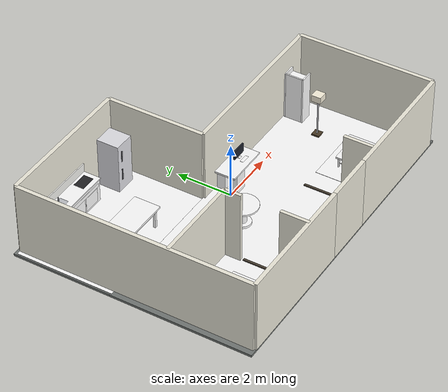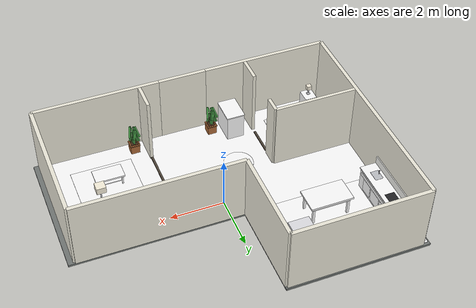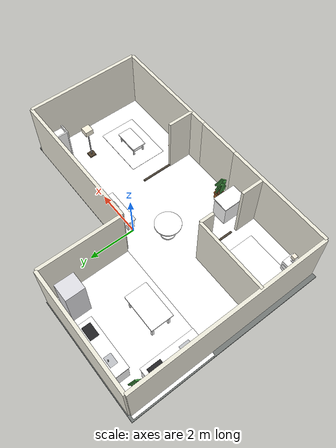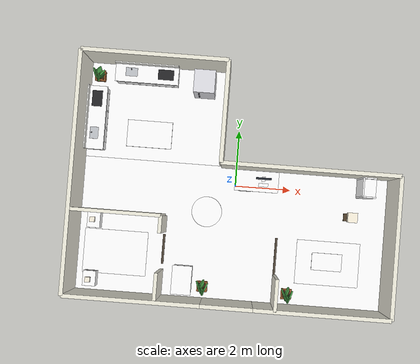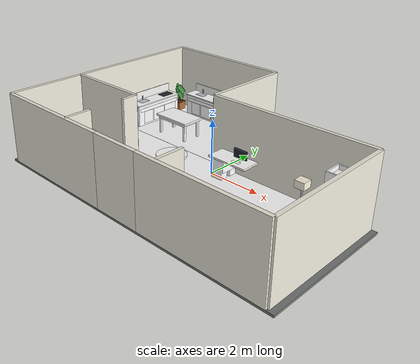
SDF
<sdf version="1.9">
 <world name="house3">
  <gravity>0 0 -9.8</gravity>
  <scene>
   <ambient>0.42 0.42 0.40 1</ambient>
   <background>0.72 0.78 0.82 1</background>
   <shadows>true</shadows>
  </scene>
  <light name="sun_key" type="directional">
   <pose>0 0 7 0 0 0</pose>
   <diffuse>0.82 0.84 0.86 1</diffuse>
   <specular>0.18 0.18 0.18 1</specular>
   <direction>-0.45 0.28 -0.84</direction>
  </light>
  <light name="foyer_light" type="point">
   <cast_shadows>false</cast_shadows>
   <pose>0.0 -3.15 2.35 0 0 0</pose>
   <diffuse>1.0 0.90 0.74 1</diffuse>
   <specular>0.18 0.16 0.13 1</specular>
   <attenuation>
    <range>5.2</range>
    <constant>0.55</constant>
    <linear>0.055</linear>
    <quadratic>0.014</quadratic>
   </attenuation>
  </light>
  <light name="living_light" type="point">
   <pose>3.75 -2.20 2.45 0 0 0</pose>
   <diffuse>0.98 0.92 0.80 1</diffuse>
   <specular>0.22 0.20 0.16 1</specular>
   <attenuation>
    <range>7.4</range>
    <constant>0.50</constant>
    <linear>0.045</linear>
    <quadratic>0.010</quadratic>
   </attenuation>
  </light>
  <light name="kitchen_dining_light" type="point">
   <pose>-3.50 2.45 2.45 0 0 0</pose>
   <diffuse>1.0 0.95 0.84 1</diffuse>
   <specular>0.22 0.20 0.16 1</specular>
   <attenuation>
    <range>7.0</range>
    <constant>0.50</constant>
    <linear>0.046</linear>
    <quadratic>0.010</quadratic>
   </attenuation>
  </light>
  <light name="bedroom_light" type="point">
   <pose>-4.10 -2.75 2.35 0 0 0</pose>
   <diffuse>1.0 0.82 0.62 1</diffuse>
   <specular>0.20 0.16 0.12 1</specular>
   <attenuation>
    <range>5.8</range>
    <constant>0.56</constant>
    <linear>0.05</linear>
    <quadratic>0.012</quadratic>
   </attenuation>
  </light>
  <light name="central_hall_light" type="point">
   <cast_shadows>false</cast_shadows>
   <pose>0.55 -0.25 2.35 0 0 0</pose>
   <diffuse>0.98 0.90 0.78 1</diffuse>
   <specular>0.20 0.18 0.14 1</specular>
   <attenuation>
    <range>4.8</range>
    <constant>0.58</constant>
    <linear>0.05</linear>
    <quadratic>0.012</quadratic>
   </attenuation>
  </light>
  <include><uri>model://house3_shell</uri><name>l_shaped_house3_shell</name></include>
  <include><uri>model://plant</uri><name>foyer_planter</name><pose>-0.92 -3.70 0 0 0 0</pose></include>
  <include><uri>model://rug</uri><name>living_rug</name><pose>3.55 -2.55 0 0 0 0</pose></include>
  <include>
   <uri>model://coffee_table</uri>
   <name>living_coffee_table</name>
   <pose>3.48 -2.48 0 0 0 0</pose>
  </include>
  <include><uri>model://bookshelf</uri><name>living_bookcase</name><pose>4.65 0.26 0 0 0 0</pose></include>
  <include><uri>model://floor_lamp</uri><name>living_floor_lamp</name><pose>4.15 -0.82 0 0 0 0</pose></include>
  <include><uri>model://plant</uri><name>living_corner_plant</name><pose>2.12 -3.74 0 0 0 0</pose></include>
  <include><uri>model://table</uri><name>dining_table</name><pose>-3.20 1.60 0 0 0 0</pose></include>
  <include>
   <uri>model://kitchen_counter</uri>
   <name>kitchen_counter_north</name>
   <pose>-3.45 3.75 0 0 0 0</pose>
  </include>
  <include>
   <uri>model://kitchen_counter</uri>
   <name>kitchen_counter_west</name>
   <pose>-5.15 2.05 0 0 0 1.5708</pose>
  </include>
  <include><uri>model://fridge</uri><name>kitchen_fridge</name><pose>-1.35 3.52 0 0 0 4.71239</pose></include>
  <include><uri>model://plant</uri><name>kitchen_plant</name><pose>-5.18 3.62 0 0 0 0</pose></include>
  <include><uri>model://rug</uri><name>bedroom_rug</name><pose>-4.18 -2.72 0 0 0 0</pose></include>
  <include>
   <uri>model://nightstand</uri>
   <name>bedroom_nightstand_north</name>
   <pose>-4.98 -1.60 0 0 0 4.71239</pose>
  </include>
  <include>
   <uri>model://nightstand</uri>
   <name>bedroom_nightstand_south</name>
   <pose>-4.98 -3.70 0 0 0 1.5708</pose>
  </include>
  <include><uri>model://dresser</uri><name>bedroom_dresser</name><pose>-1.65 -3.48 0 0 0 1.5708</pose></include>
  <include><uri>model://desk</uri><name>office_desk</name><pose>0.75 0.22 0 0 0 0</pose></include>
  <include>
   <uri>model://round_table</uri>
   <name>office_meeting_table</name>
   <pose>-0.95 -1.00 0 0 0 0</pose>
  </include>
 </world>
</sdf>

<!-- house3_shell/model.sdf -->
<sdf version="1.9">
  <model name="house3_shell">
    <static>true</static>
    <link name="link">

      <!-- True L-shaped house: south bedroom/living wing plus northwest kitchen wing. -->
      <visual name="foundation_south_wing_visual">
        <pose>0.00 -1.75 -0.055 0 0 0</pose>
        <geometry><box><size>11.70 5.00 0.08</size></box></geometry>
        <material><ambient>0.34 0.36 0.35 1</ambient><diffuse>0.45 0.47 0.46 1</diffuse></material>
      </visual>
      <collision name="foundation_south_wing_collision">
        <pose>0.00 -1.75 -0.055 0 0 0</pose>
        <geometry><box><size>11.70 5.00 0.08</size></box></geometry>
      </collision>
      <visual name="foundation_north_wing_visual">
        <pose>-3.175 2.45 -0.055 0 0 0</pose>
        <geometry><box><size>5.35 3.70 0.08</size></box></geometry>
        <material><ambient>0.34 0.36 0.35 1</ambient><diffuse>0.45 0.47 0.46 1</diffuse></material>
      </visual>
      <collision name="foundation_north_wing_collision">
        <pose>-3.175 2.45 -0.055 0 0 0</pose>
        <geometry><box><size>5.35 3.70 0.08</size></box></geometry>
      </collision>

      <visual name="floor_south_wing_visual">
        <pose>0.00 -1.75 -0.006 0 0 0</pose>
        <geometry><box><size>11.20 4.90 0.012</size></box></geometry>
        <material>
          <ambient>1 1 1 1</ambient>
          <diffuse>1 1 1 1</diffuse>
          <specular>0.05 0.05 0.05 1</specular>
          <pbr>
            <metal>
              <albedo_map>materials/textures/wood_albedo.jpg</albedo_map>
              <normal_map>materials/textures/wood_normal.jpg</normal_map>
              <roughness_map>materials/textures/wood_roughness.jpg</roughness_map>
              <metalness>0.0</metalness>
            </metal>
          </pbr>
        </material>
      </visual>
      <collision name="floor_south_wing_collision">
        <pose>0.00 -1.75 -0.006 0 0 0</pose>
        <geometry><box><size>11.20 4.90 0.012</size></box></geometry>
      </collision>
      <visual name="floor_north_wing_visual">
        <pose>-3.175 2.45 -0.005 0 0 0</pose>
        <geometry><box><size>5.25 3.50 0.012</size></box></geometry>
        <material>
          <ambient>1 1 1 1</ambient>
          <diffuse>1 1 1 1</diffuse>
          <specular>0.05 0.05 0.05 1</specular>
          <pbr>
            <metal>
              <albedo_map>materials/textures/wood_albedo.jpg</albedo_map>
              <normal_map>materials/textures/wood_normal.jpg</normal_map>
              <roughness_map>materials/textures/wood_roughness.jpg</roughness_map>
              <metalness>0.0</metalness>
            </metal>
          </pbr>
        </material>
      </visual>
      <collision name="floor_north_wing_collision">
        <pose>-3.175 2.45 -0.005 0 0 0</pose>
        <geometry><box><size>5.25 3.50 0.012</size></box></geometry>
      </collision>

      <!-- Exterior L-shaped boundary. -->
      <collision name="wall_west_full">
        <pose>-5.60 0.0 1.30 0 0 0</pose>
        <geometry><box><size>0.14 8.40 2.60</size></box></geometry>
      </collision>
      <visual name="wall_west_full_visual">
        <pose>-5.60 0.0 1.30 0 0 0</pose>
        <geometry><box><size>0.14 8.40 2.60</size></box></geometry>
        <material><ambient>0.80 0.81 0.77 1</ambient><diffuse>0.93 0.92 0.86 1</diffuse></material>
      </visual>
      <collision name="wall_south_left">
        <pose>-3.25 -4.20 1.30 0 0 0</pose>
        <geometry><box><size>4.70 0.14 2.60</size></box></geometry>
      </collision>
      <visual name="wall_south_left_visual">
        <pose>-3.25 -4.20 1.30 0 0 0</pose>
        <geometry><box><size>4.70 0.14 2.60</size></box></geometry>
        <material><ambient>0.80 0.81 0.77 1</ambient><diffuse>0.93 0.92 0.86 1</diffuse></material>
      </visual>
      <collision name="wall_south_right">
        <pose>3.25 -4.20 1.30 0 0 0</pose>
        <geometry><box><size>4.70 0.14 2.60</size></box></geometry>
      </collision>
      <visual name="wall_south_right_visual">
        <pose>3.25 -4.20 1.30 0 0 0</pose>
        <geometry><box><size>4.70 0.14 2.60</size></box></geometry>
        <material><ambient>0.80 0.81 0.77 1</ambient><diffuse>0.93 0.92 0.86 1</diffuse></material>
      </visual>
      <collision name="front_entry_closure">
        <pose>0.00 -4.20 1.30 0 0 0</pose>
        <geometry><box><size>1.80 0.14 2.60</size></box></geometry>
      </collision>
      <visual name="front_entry_closure_visual">
        <pose>0.00 -4.20 1.30 0 0 0</pose>
        <geometry><box><size>1.80 0.14 2.60</size></box></geometry>
        <material><ambient>0.80 0.81 0.77 1</ambient><diffuse>0.93 0.92 0.86 1</diffuse></material>
      </visual>
      <collision name="wall_east_south_wing">
        <pose>5.60 -1.75 1.30 0 0 0</pose>
        <geometry><box><size>0.14 4.90 2.60</size></box></geometry>
      </collision>
      <visual name="wall_east_south_wing_visual">
        <pose>5.60 -1.75 1.30 0 0 0</pose>
        <geometry><box><size>0.14 4.90 2.60</size></box></geometry>
        <material><ambient>0.80 0.81 0.77 1</ambient><diffuse>0.93 0.92 0.86 1</diffuse></material>
      </visual>
      <collision name="wall_inner_north_south_wing">
        <pose>2.525 0.70 1.30 0 0 0</pose>
        <geometry><box><size>6.15 0.14 2.60</size></box></geometry>
      </collision>
      <visual name="wall_inner_north_south_wing_visual">
        <pose>2.525 0.70 1.30 0 0 0</pose>
        <geometry><box><size>6.15 0.14 2.60</size></box></geometry>
        <material><ambient>0.80 0.81 0.77 1</ambient><diffuse>0.93 0.92 0.86 1</diffuse></material>
      </visual>
      <collision name="wall_inner_east_north_wing">
        <pose>-0.55 2.45 1.30 0 0 0</pose>
        <geometry><box><size>0.14 3.50 2.60</size></box></geometry>
      </collision>
      <visual name="wall_inner_east_north_wing_visual">
        <pose>-0.55 2.45 1.30 0 0 0</pose>
        <geometry><box><size>0.14 3.50 2.60</size></box></geometry>
        <material><ambient>0.80 0.81 0.77 1</ambient><diffuse>0.93 0.92 0.86 1</diffuse></material>
      </visual>
      <collision name="wall_north_wing">
        <pose>-3.075 4.20 1.30 0 0 0</pose>
        <geometry><box><size>5.05 0.14 2.60</size></box></geometry>
      </collision>
      <visual name="wall_north_wing_visual">
        <pose>-3.075 4.20 1.30 0 0 0</pose>
        <geometry><box><size>5.05 0.14 2.60</size></box></geometry>
        <material><ambient>0.80 0.81 0.77 1</ambient><diffuse>0.93 0.92 0.86 1</diffuse></material>
      </visual>

      <!-- Interior walls: bedroom split and living opening. -->
      <collision name="bedroom_east_wall_south">
        <pose>-2.45 -3.70 1.30 0 0 0</pose>
        <geometry><box><size>0.12 1.00 2.60</size></box></geometry>
      </collision>
      <visual name="bedroom_east_wall_south_visual">
        <pose>-2.45 -3.70 1.30 0 0 0</pose>
        <geometry><box><size>0.12 1.00 2.60</size></box></geometry>
        <material><ambient>0.80 0.81 0.77 1</ambient><diffuse>0.93 0.92 0.86 1</diffuse></material>
      </visual>
      <collision name="bedroom_east_wall_north">
        <pose>-2.45 -1.55 1.30 0 0 0</pose>
        <geometry><box><size>0.12 0.60 2.60</size></box></geometry>
      </collision>
      <visual name="bedroom_east_wall_north_visual">
        <pose>-2.45 -1.55 1.30 0 0 0</pose>
        <geometry><box><size>0.12 0.60 2.60</size></box></geometry>
        <material><ambient>0.80 0.81 0.77 1</ambient><diffuse>0.93 0.92 0.86 1</diffuse></material>
      </visual>
      <collision name="bedroom_north_wall">
        <pose>-4.025 -1.25 1.30 0 0 0</pose>
        <geometry><box><size>3.15 0.12 2.60</size></box></geometry>
      </collision>
      <visual name="bedroom_north_wall_visual">
        <pose>-4.025 -1.25 1.30 0 0 0</pose>
        <geometry><box><size>3.15 0.12 2.60</size></box></geometry>
        <material><ambient>0.80 0.81 0.77 1</ambient><diffuse>0.93 0.92 0.86 1</diffuse></material>
      </visual>

      <collision name="living_west_wall_south">
        <pose>1.65 -3.65 1.30 0 0 0</pose>
        <geometry><box><size>0.12 1.10 2.60</size></box></geometry>
      </collision>
      <visual name="living_west_wall_south_visual">
        <pose>1.65 -3.65 1.30 0 0 0</pose>
        <geometry><box><size>0.12 1.10 2.60</size></box></geometry>
        <material><ambient>0.80 0.81 0.77 1</ambient><diffuse>0.93 0.92 0.86 1</diffuse></material>
      </visual>

      <!-- Low thresholds show doors without blocking the robot or lidar. -->
      <visual name="bedroom_threshold">
        <pose>-2.44 -2.47 0.035 0 0 1.5708</pose>
        <geometry><box><size>1.08 0.08 0.04</size></box></geometry>
        <material><ambient>0.18 0.16 0.14 1</ambient><diffuse>0.30 0.26 0.21 1</diffuse></material>
      </visual>
      <visual name="living_threshold">
        <pose>1.64 -2.43 0.035 0 0 1.5708</pose>
        <geometry><box><size>1.34 0.08 0.04</size></box></geometry>
        <material><ambient>0.18 0.16 0.14 1</ambient><diffuse>0.30 0.26 0.21 1</diffuse></material>
      </visual>
    </link>
  </model>
</sdf>

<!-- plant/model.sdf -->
<sdf version="1.9">
  <model name="plant">
    <static>true</static>
    <link name="body">

      <collision name="pot_collision">
        <pose>0 0 0.18 0 0 0</pose>
        <geometry><box><size>0.34 0.34 0.38</size></box></geometry>
      </collision>
      <collision name="pot_lip_collision">
        <pose>0 0 0.35 0 0 0</pose>
        <geometry><box><size>0.38 0.38 0.03</size></box></geometry>
      </collision>
      <collision name="stem_main_collision">
        <pose>0 0 0.64 0 0 0</pose>
        <geometry><box><size>0.04 0.04 0.52</size></box></geometry>
      </collision>
      <collision name="stem_left_collision">
        <pose>-0.06 0.02 0.58 0.18 0.14 0</pose>
        <geometry><box><size>0.03 0.03 0.34</size></box></geometry>
      </collision>
      <collision name="stem_right_collision">
        <pose>0.06 -0.02 0.58 -0.18 -0.14 0</pose>
        <geometry><box><size>0.03 0.03 0.34</size></box></geometry>
      </collision>
      <collision name="leaf_left_top_collision">
        <pose>-0.12 0.03 0.92 0.65 0 0.40</pose>
        <geometry><box><size>0.05 0.18 0.42</size></box></geometry>
      </collision>
      <collision name="leaf_right_top_collision">
        <pose>0.12 -0.03 0.92 0.65 0 -0.40</pose>
        <geometry><box><size>0.05 0.18 0.42</size></box></geometry>
      </collision>
      <collision name="leaf_front_top_collision">
        <pose>0 0.12 0.88 0.52 -0.34 0</pose>
        <geometry><box><size>0.05 0.16 0.36</size></box></geometry>
      </collision>
      <collision name="leaf_back_top_collision">
        <pose>0 -0.12 0.88 0.52 0.34 0</pose>
        <geometry><box><size>0.05 0.16 0.36</size></box></geometry>
      </collision>
      <collision name="leaf_left_low_collision">
        <pose>-0.10 0.06 0.68 0.48 0 0.62</pose>
        <geometry><box><size>0.05 0.15 0.30</size></box></geometry>
      </collision>
      <collision name="leaf_right_low_collision">
        <pose>0.10 -0.06 0.68 0.48 0 -0.62</pose>
        <geometry><box><size>0.05 0.15 0.30</size></box></geometry>
      </collision>
      <collision name="leaf_front_low_collision">
        <pose>0.03 0.11 0.62 0.42 -0.22 0.15</pose>
        <geometry><box><size>0.05 0.14 0.26</size></box></geometry>
      </collision>
      <collision name="leaf_back_low_collision">
        <pose>-0.03 -0.11 0.62 0.42 0.22 -0.15</pose>
        <geometry><box><size>0.05 0.14 0.26</size></box></geometry>
      </collision>
      <visual name="pot_visual">
        <pose>0 0 0.18 0 0 0</pose>
        <geometry><box><size>0.34 0.34 0.38</size></box></geometry>
        <material>
          <ambient>0.50 0.31 0.16 1</ambient>
          <diffuse>0.68 0.42 0.22 1</diffuse>
        </material>
      </visual>
      <visual name="pot_lip">
        <pose>0 0 0.35 0 0 0</pose>
        <geometry><box><size>0.38 0.38 0.03</size></box></geometry>
        <material><ambient>0.56 0.35 0.18 1</ambient><diffuse>0.74 0.46 0.25 1</diffuse></material>
      </visual>
      <visual name="soil_visual">
        <pose>0 0 0.38 0 0 0</pose>
        <geometry><box><size>0.26 0.26 0.03</size></box></geometry>
        <material><ambient>0.19 0.12 0.07 1</ambient><diffuse>0.28 0.18 0.10 1</diffuse></material>
      </visual>

      <visual name="stem_main">
        <pose>0 0 0.64 0 0 0</pose>
        <geometry><box><size>0.04 0.04 0.52</size></box></geometry>
        <material><ambient>0.22 0.33 0.15 1</ambient><diffuse>0.34 0.50 0.22 1</diffuse></material>
      </visual>
      <visual name="stem_left">
        <pose>-0.06 0.02 0.58 0.18 0.14 0</pose>
        <geometry><box><size>0.03 0.03 0.34</size></box></geometry>
        <material><ambient>0.22 0.33 0.15 1</ambient><diffuse>0.34 0.50 0.22 1</diffuse></material>
      </visual>
      <visual name="stem_right">
        <pose>0.06 -0.02 0.58 -0.18 -0.14 0</pose>
        <geometry><box><size>0.03 0.03 0.34</size></box></geometry>
        <material><ambient>0.22 0.33 0.15 1</ambient><diffuse>0.34 0.50 0.22 1</diffuse></material>
      </visual>

      <visual name="leaf_left_top">
        <pose>-0.12 0.03 0.92 0.65 0 0.40</pose>
        <geometry><box><size>0.05 0.18 0.42</size></box></geometry>
        <material><ambient>0.18 0.40 0.18 1</ambient><diffuse>0.28 0.62 0.28 1</diffuse></material>
      </visual>
      <visual name="leaf_right_top">
        <pose>0.12 -0.03 0.92 0.65 0 -0.40</pose>
        <geometry><box><size>0.05 0.18 0.42</size></box></geometry>
        <material><ambient>0.18 0.40 0.18 1</ambient><diffuse>0.28 0.62 0.28 1</diffuse></material>
      </visual>
      <visual name="leaf_front_top">
        <pose>0 0.12 0.88 0.52 -0.34 0</pose>
        <geometry><box><size>0.05 0.16 0.36</size></box></geometry>
        <material><ambient>0.18 0.40 0.18 1</ambient><diffuse>0.28 0.62 0.28 1</diffuse></material>
      </visual>
      <visual name="leaf_back_top">
        <pose>0 -0.12 0.88 0.52 0.34 0</pose>
        <geometry><box><size>0.05 0.16 0.36</size></box></geometry>
        <material><ambient>0.18 0.40 0.18 1</ambient><diffuse>0.28 0.62 0.28 1</diffuse></material>
      </visual>
      <visual name="leaf_left_low">
        <pose>-0.10 0.06 0.68 0.48 0 0.62</pose>
        <geometry><box><size>0.05 0.15 0.30</size></box></geometry>
        <material><ambient>0.18 0.40 0.18 1</ambient><diffuse>0.28 0.62 0.28 1</diffuse></material>
      </visual>
      <visual name="leaf_right_low">
        <pose>0.10 -0.06 0.68 0.48 0 -0.62</pose>
        <geometry><box><size>0.05 0.15 0.30</size></box></geometry>
        <material><ambient>0.18 0.40 0.18 1</ambient><diffuse>0.28 0.62 0.28 1</diffuse></material>
      </visual>
      <visual name="leaf_front_low">
        <pose>0.03 0.11 0.62 0.42 -0.22 0.15</pose>
        <geometry><box><size>0.05 0.14 0.26</size></box></geometry>
        <material><ambient>0.18 0.40 0.18 1</ambient><diffuse>0.28 0.62 0.28 1</diffuse></material>
      </visual>
      <visual name="leaf_back_low">
        <pose>-0.03 -0.11 0.62 0.42 0.22 -0.15</pose>
        <geometry><box><size>0.05 0.14 0.26</size></box></geometry>
        <material><ambient>0.18 0.40 0.18 1</ambient><diffuse>0.28 0.62 0.28 1</diffuse></material>
      </visual>

    </link>
  </model>
</sdf>

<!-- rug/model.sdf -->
<sdf version="1.9">
  <model name="rug">
    <static>true</static>
    <link name="body">

      <visual name="rug_base">
        <pose>0 0 0.005 0 0 0</pose>
        <geometry><box><size>2.30 1.60 0.01</size></box></geometry>
        <material>
          <ambient>1 1 1 1</ambient>
          <diffuse>1 1 1 1</diffuse>
          <specular>0.01 0.01 0.01 1</specular>
          <pbr>
            <metal>
              <albedo_map>materials/textures/carpet_albedo.jpg</albedo_map>
              <normal_map>materials/textures/carpet_normal.jpg</normal_map>
              <roughness_map>materials/textures/carpet_roughness.jpg</roughness_map>
              <metalness>0.0</metalness>
            </metal>
          </pbr>
        </material>
      </visual>
    </link>
  </model>
</sdf>

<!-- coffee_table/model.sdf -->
<sdf version="1.9">
  <model name="coffee_table">
    <static>true</static>
    <link name="body">

      <collision name="top_collision">
        <pose>0 0 0.42 0 0 0</pose>
        <geometry><box><size>1.08 0.62 0.06</size></box></geometry>
      </collision>
      <visual name="top_visual">
        <pose>0 0 0.42 0 0 0</pose>
        <geometry><box><size>1.08 0.62 0.06</size></box></geometry>
        <material>
          <ambient>1 1 1 1</ambient>
          <diffuse>1 1 1 1</diffuse>
          <specular>0.05 0.05 0.05 1</specular>
          <pbr>
            <metal>
              <albedo_map>materials/textures/wood_albedo.png</albedo_map>
              <normal_map>materials/textures/wood_normal.png</normal_map>
              <roughness_map>materials/textures/wood_roughness.png</roughness_map>
              <metalness>0.0</metalness>
            </metal>
          </pbr>
        </material>
      </visual>

      <collision name="shelf_collision">
        <pose>0 0 0.17 0 0 0</pose>
        <geometry><box><size>0.90 0.46 0.035</size></box></geometry>
      </collision>
      <visual name="shelf_visual">
        <pose>0 0 0.17 0 0 0</pose>
        <geometry><box><size>0.90 0.46 0.035</size></box></geometry>
        <material>
          <ambient>1 1 1 1</ambient>
          <diffuse>1 1 1 1</diffuse>
          <specular>0.05 0.05 0.05 1</specular>
          <pbr>
            <metal>
              <albedo_map>materials/textures/wood_albedo.png</albedo_map>
              <normal_map>materials/textures/wood_normal.png</normal_map>
              <roughness_map>materials/textures/wood_roughness.png</roughness_map>
              <metalness>0.0</metalness>
            </metal>
          </pbr>
        </material>
      </visual>

      <collision name="leg_fl">
        <pose>0.45 0.23 0.21 0 0 0</pose>
        <geometry><box><size>0.055 0.055 0.43</size></box></geometry>
      </collision>
      <collision name="leg_fr">
        <pose>0.45 -0.23 0.21 0 0 0</pose>
        <geometry><box><size>0.055 0.055 0.43</size></box></geometry>
      </collision>
      <collision name="leg_bl">
        <pose>-0.45 0.23 0.21 0 0 0</pose>
        <geometry><box><size>0.055 0.055 0.43</size></box></geometry>
      </collision>
      <collision name="leg_br">
        <pose>-0.45 -0.23 0.21 0 0 0</pose>
        <geometry><box><size>0.055 0.055 0.43</size></box></geometry>
      </collision>

      <visual name="leg_fl_visual">
        <pose>0.45 0.23 0.21 0 0 0</pose>
        <geometry><box><size>0.055 0.055 0.43</size></box></geometry>
        <material><ambient>1 1 1 1</ambient><diffuse>1 1 1 1</diffuse><specular>0.05 0.05 0.05 1</specular><pbr><metal><albedo_map>materials/textures/wood_albedo.png</albedo_map><normal_map>materials/textures/wood_normal.png</normal_map><roughness_map>materials/textures/wood_roughness.png</roughness_map><metalness>0.0</metalness></metal></pbr></material>
      </visual>
      <visual name="leg_fr_visual">
        <pose>0.45 -0.23 0.21 0 0 0</pose>
        <geometry><box><size>0.055 0.055 0.43</size></box></geometry>
        <material><ambient>1 1 1 1</ambient><diffuse>1 1 1 1</diffuse><specular>0.05 0.05 0.05 1</specular><pbr><metal><albedo_map>materials/textures/wood_albedo.png</albedo_map><normal_map>materials/textures/wood_normal.png</normal_map><roughness_map>materials/textures/wood_roughness.png</roughness_map><metalness>0.0</metalness></metal></pbr></material>
      </visual>
      <visual name="leg_bl_visual">
        <pose>-0.45 0.23 0.21 0 0 0</pose>
        <geometry><box><size>0.055 0.055 0.43</size></box></geometry>
        <material><ambient>1 1 1 1</ambient><diffuse>1 1 1 1</diffuse><specular>0.05 0.05 0.05 1</specular><pbr><metal><albedo_map>materials/textures/wood_albedo.png</albedo_map><normal_map>materials/textures/wood_normal.png</normal_map><roughness_map>materials/textures/wood_roughness.png</roughness_map><metalness>0.0</metalness></metal></pbr></material>
      </visual>
      <visual name="leg_br_visual">
        <pose>-0.45 -0.23 0.21 0 0 0</pose>
        <geometry><box><size>0.055 0.055 0.43</size></box></geometry>
        <material><ambient>1 1 1 1</ambient><diffuse>1 1 1 1</diffuse><specular>0.05 0.05 0.05 1</specular><pbr><metal><albedo_map>materials/textures/wood_albedo.png</albedo_map><normal_map>materials/textures/wood_normal.png</normal_map><roughness_map>materials/textures/wood_roughness.png</roughness_map><metalness>0.0</metalness></metal></pbr></material>
      </visual>

    </link>
  </model>
</sdf>

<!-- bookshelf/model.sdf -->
<sdf version="1.9">
  <model name="bookshelf">
    <static>true</static>
    <link name="body">

      <collision name="left_side_collision">
        <pose>0 0.33 0.88 0 0 0</pose>
        <geometry><box><size>0.48 0.05 1.78</size></box></geometry>
      </collision>
      <collision name="right_side_collision">
        <pose>0 -0.33 0.88 0 0 0</pose>
        <geometry><box><size>0.48 0.05 1.78</size></box></geometry>
      </collision>
      <collision name="back_collision">
        <pose>-0.21 0 0.88 0 0 0</pose>
        <geometry><box><size>0.05 0.68 1.78</size></box></geometry>
      </collision>

      <collision name="bottom_shelf_collision">
        <pose>0.03 0 0.14 0 0 0</pose>
        <geometry><box><size>0.44 0.68 0.05</size></box></geometry>
      </collision>
      <collision name="mid1_shelf_collision">
        <pose>0.03 0 0.50 0 0 0</pose>
        <geometry><box><size>0.44 0.68 0.05</size></box></geometry>
      </collision>
      <collision name="mid2_shelf_collision">
        <pose>0.03 0 0.86 0 0 0</pose>
        <geometry><box><size>0.44 0.68 0.05</size></box></geometry>
      </collision>
      <collision name="mid3_shelf_collision">
        <pose>0.03 0 1.22 0 0 0</pose>
        <geometry><box><size>0.44 0.68 0.05</size></box></geometry>
      </collision>
      <collision name="top_shelf_collision">
        <pose>0.03 0 1.58 0 0 0</pose>
        <geometry><box><size>0.44 0.68 0.05</size></box></geometry>
      </collision>

      <collision name="books_2_collision">
        <pose>0.09 -0.03 0.66 0 0 0</pose>
        <geometry><box><size>0.20 0.42 0.24</size></box></geometry>
      </collision>
      <collision name="books_3_collision">
        <pose>0.09 0.02 1.02 0 0 0</pose>
        <geometry><box><size>0.20 0.46 0.24</size></box></geometry>
      </collision>
      <collision name="books_4_collision">
        <pose>0.09 -0.04 1.38 0 0 0</pose>
        <geometry><box><size>0.20 0.44 0.22</size></box></geometry>
      </collision>

      <visual name="left_side_visual">
        <pose>0 0.33 0.88 0 0 0</pose>
        <geometry><box><size>0.48 0.05 1.78</size></box></geometry>
        <material><ambient>1 1 1 1</ambient><diffuse>1 1 1 1</diffuse><specular>0.05 0.05 0.05 1</specular><pbr><metal><albedo_map>materials/textures/wood_albedo.jpg</albedo_map><normal_map>materials/textures/wood_normal.jpg</normal_map><roughness_map>materials/textures/wood_roughness.jpg</roughness_map><metalness>0.0</metalness></metal></pbr></material>
      </visual>
      <visual name="right_side_visual">
        <pose>0 -0.33 0.88 0 0 0</pose>
        <geometry><box><size>0.48 0.05 1.78</size></box></geometry>
        <material><ambient>1 1 1 1</ambient><diffuse>1 1 1 1</diffuse><specular>0.05 0.05 0.05 1</specular><pbr><metal><albedo_map>materials/textures/wood_albedo.jpg</albedo_map><normal_map>materials/textures/wood_normal.jpg</normal_map><roughness_map>materials/textures/wood_roughness.jpg</roughness_map><metalness>0.0</metalness></metal></pbr></material>
      </visual>
      <visual name="back_visual">
        <pose>-0.21 0 0.88 0 0 0</pose>
        <geometry><box><size>0.05 0.68 1.78</size></box></geometry>
        <material><ambient>1 1 1 1</ambient><diffuse>1 1 1 1</diffuse><specular>0.05 0.05 0.05 1</specular><pbr><metal><albedo_map>materials/textures/wood_albedo.jpg</albedo_map><normal_map>materials/textures/wood_normal.jpg</normal_map><roughness_map>materials/textures/wood_roughness.jpg</roughness_map><metalness>0.0</metalness></metal></pbr></material>
      </visual>

      <visual name="bottom_shelf_visual">
        <pose>0.03 0 0.14 0 0 0</pose>
        <geometry><box><size>0.44 0.68 0.05</size></box></geometry>
        <material><ambient>1 1 1 1</ambient><diffuse>1 1 1 1</diffuse><specular>0.05 0.05 0.05 1</specular><pbr><metal><albedo_map>materials/textures/wood_albedo.jpg</albedo_map><normal_map>materials/textures/wood_normal.jpg</normal_map><roughness_map>materials/textures/wood_roughness.jpg</roughness_map><metalness>0.0</metalness></metal></pbr></material>
      </visual>
      <visual name="mid1_shelf_visual">
        <pose>0.03 0 0.50 0 0 0</pose>
        <geometry><box><size>0.44 0.68 0.05</size></box></geometry>
        <material><ambient>1 1 1 1</ambient><diffuse>1 1 1 1</diffuse><specular>0.05 0.05 0.05 1</specular><pbr><metal><albedo_map>materials/textures/wood_albedo.jpg</albedo_map><normal_map>materials/textures/wood_normal.jpg</normal_map><roughness_map>materials/textures/wood_roughness.jpg</roughness_map><metalness>0.0</metalness></metal></pbr></material>
      </visual>
      <visual name="mid2_shelf_visual">
        <pose>0.03 0 0.86 0 0 0</pose>
        <geometry><box><size>0.44 0.68 0.05</size></box></geometry>
        <material><ambient>1 1 1 1</ambient><diffuse>1 1 1 1</diffuse><specular>0.05 0.05 0.05 1</specular><pbr><metal><albedo_map>materials/textures/wood_albedo.jpg</albedo_map><normal_map>materials/textures/wood_normal.jpg</normal_map><roughness_map>materials/textures/wood_roughness.jpg</roughness_map><metalness>0.0</metalness></metal></pbr></material>
      </visual>
      <visual name="mid3_shelf_visual">
        <pose>0.03 0 1.22 0 0 0</pose>
        <geometry><box><size>0.44 0.68 0.05</size></box></geometry>
        <material><ambient>1 1 1 1</ambient><diffuse>1 1 1 1</diffuse><specular>0.05 0.05 0.05 1</specular><pbr><metal><albedo_map>materials/textures/wood_albedo.jpg</albedo_map><normal_map>materials/textures/wood_normal.jpg</normal_map><roughness_map>materials/textures/wood_roughness.jpg</roughness_map><metalness>0.0</metalness></metal></pbr></material>
      </visual>
      <visual name="top_shelf_visual">
        <pose>0.03 0 1.58 0 0 0</pose>
        <geometry><box><size>0.44 0.68 0.05</size></box></geometry>
        <material><ambient>1 1 1 1</ambient><diffuse>1 1 1 1</diffuse><specular>0.05 0.05 0.05 1</specular><pbr><metal><albedo_map>materials/textures/wood_albedo.jpg</albedo_map><normal_map>materials/textures/wood_normal.jpg</normal_map><roughness_map>materials/textures/wood_roughness.jpg</roughness_map><metalness>0.0</metalness></metal></pbr></material>
      </visual>

      <!-- simple books -->
      <visual name="books_2">
        <pose>0.09 -0.03 0.66 0 0 0</pose>
        <geometry><box><size>0.20 0.42 0.24</size></box></geometry>
        <material><ambient>0.45 0.18 0.18 1</ambient><diffuse>0.70 0.28 0.28 1</diffuse></material>
      </visual>
      <visual name="books_3">
        <pose>0.09 0.02 1.02 0 0 0</pose>
        <geometry><box><size>0.20 0.46 0.24</size></box></geometry>
        <material><ambient>0.18 0.40 0.18 1</ambient><diffuse>0.28 0.62 0.28 1</diffuse></material>
      </visual>
      <visual name="books_4">
        <pose>0.09 -0.04 1.38 0 0 0</pose>
        <geometry><box><size>0.20 0.44 0.22</size></box></geometry>
        <material><ambient>0.48 0.36 0.14 1</ambient><diffuse>0.74 0.56 0.22 1</diffuse></material>
      </visual>

    </link>
  </model>
</sdf>

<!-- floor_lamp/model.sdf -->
<sdf version="1.9">
  <model name="floor_lamp">
    <static>true</static>
    <link name="body">

      <collision name="base_collision">
        <pose>0 0 0.03 0 0 0</pose>
        <geometry><box><size>0.28 0.28 0.06</size></box></geometry>
      </collision>
      <collision name="stem_collision">
        <pose>0 0 0.80 0 0 0</pose>
        <geometry><box><size>0.04 0.04 1.50</size></box></geometry>
      </collision>
      <collision name="shade_collision">
        <pose>0 0 1.55 0 0 0</pose>
        <geometry><box><size>0.34 0.34 0.24</size></box></geometry>
      </collision>
      <visual name="base_visual">
        <pose>0 0 0.03 0 0 0</pose>
        <geometry><box><size>0.28 0.28 0.06</size></box></geometry>
        <material>
          <ambient>0.20 0.16 0.11 1</ambient>
          <diffuse>0.30 0.24 0.16 1</diffuse>
        </material>
      </visual>

      <visual name="stem_visual">
        <pose>0 0 0.80 0 0 0</pose>
        <geometry><box><size>0.04 0.04 1.50</size></box></geometry>
        <material><ambient>0.62 0.62 0.63 1</ambient><diffuse>0.78 0.78 0.80 1</diffuse></material>
      </visual>
      <visual name="shade_visual">
        <pose>0 0 1.55 0 0 0</pose>
        <geometry><box><size>0.34 0.34 0.24</size></box></geometry>
        <material><ambient>0.92 0.89 0.80 1</ambient><diffuse>0.98 0.95 0.87 1</diffuse></material>
      </visual>

    </link>
  </model>
</sdf>

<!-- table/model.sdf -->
<sdf version="1.9">
  <model name="table">
    <static>true</static>
    <link name="body">

      <collision name="top_collision">
        <pose>0 0 0.75 0 0 0</pose>
        <geometry><box><size>1.60 0.95 0.07</size></box></geometry>
      </collision>
      <visual name="top_visual">
        <pose>0 0 0.75 0 0 0</pose>
        <geometry><box><size>1.60 0.95 0.07</size></box></geometry>
        <material>
          <ambient>1 1 1 1</ambient>
          <diffuse>1 1 1 1</diffuse>
          <specular>0.05 0.05 0.05 1</specular>
          <pbr>
            <metal>
              <albedo_map>materials/textures/wood_albedo.png</albedo_map>
              <normal_map>materials/textures/wood_normal.png</normal_map>
              <roughness_map>materials/textures/wood_roughness.png</roughness_map>
              <metalness>0.0</metalness>
            </metal>
          </pbr>
        </material>
      </visual>

      <collision name="apron_left">
        <pose>0 0.39 0.67 0 0 0</pose>
        <geometry><box><size>1.40 0.065 0.12</size></box></geometry>
      </collision>
      <collision name="apron_right">
        <pose>0 -0.39 0.67 0 0 0</pose>
        <geometry><box><size>1.40 0.065 0.12</size></box></geometry>
      </collision>
      <collision name="apron_front">
        <pose>0.66 0 0.67 0 0 0</pose>
        <geometry><box><size>0.065 0.74 0.12</size></box></geometry>
      </collision>
      <collision name="apron_back">
        <pose>-0.66 0 0.67 0 0 0</pose>
        <geometry><box><size>0.065 0.74 0.12</size></box></geometry>
      </collision>

      <visual name="apron_left_visual">
        <pose>0 0.39 0.67 0 0 0</pose>
        <geometry><box><size>1.40 0.065 0.12</size></box></geometry>
        <material><ambient>1 1 1 1</ambient><diffuse>1 1 1 1</diffuse><specular>0.05 0.05 0.05 1</specular><pbr><metal><albedo_map>materials/textures/wood_albedo.png</albedo_map><normal_map>materials/textures/wood_normal.png</normal_map><roughness_map>materials/textures/wood_roughness.png</roughness_map><metalness>0.0</metalness></metal></pbr></material>
      </visual>
      <visual name="apron_right_visual">
        <pose>0 -0.39 0.67 0 0 0</pose>
        <geometry><box><size>1.40 0.065 0.12</size></box></geometry>
        <material><ambient>1 1 1 1</ambient><diffuse>1 1 1 1</diffuse><specular>0.05 0.05 0.05 1</specular><pbr><metal><albedo_map>materials/textures/wood_albedo.png</albedo_map><normal_map>materials/textures/wood_normal.png</normal_map><roughness_map>materials/textures/wood_roughness.png</roughness_map><metalness>0.0</metalness></metal></pbr></material>
      </visual>
      <visual name="apron_front_visual">
        <pose>0.66 0 0.67 0 0 0</pose>
        <geometry><box><size>0.065 0.74 0.12</size></box></geometry>
        <material><ambient>1 1 1 1</ambient><diffuse>1 1 1 1</diffuse><specular>0.05 0.05 0.05 1</specular><pbr><metal><albedo_map>materials/textures/wood_albedo.png</albedo_map><normal_map>materials/textures/wood_normal.png</normal_map><roughness_map>materials/textures/wood_roughness.png</roughness_map><metalness>0.0</metalness></metal></pbr></material>
      </visual>
      <visual name="apron_back_visual">
        <pose>-0.66 0 0.67 0 0 0</pose>
        <geometry><box><size>0.065 0.74 0.12</size></box></geometry>
        <material><ambient>1 1 1 1</ambient><diffuse>1 1 1 1</diffuse><specular>0.05 0.05 0.05 1</specular><pbr><metal><albedo_map>materials/textures/wood_albedo.png</albedo_map><normal_map>materials/textures/wood_normal.png</normal_map><roughness_map>materials/textures/wood_roughness.png</roughness_map><metalness>0.0</metalness></metal></pbr></material>
      </visual>

      <collision name="leg_fl">
        <pose>0.66 0.36 0.35 0 0 0</pose>
        <geometry><box><size>0.085 0.085 0.71</size></box></geometry>
      </collision>
      <collision name="leg_fr">
        <pose>0.66 -0.36 0.35 0 0 0</pose>
        <geometry><box><size>0.085 0.085 0.71</size></box></geometry>
      </collision>
      <collision name="leg_bl">
        <pose>-0.66 0.36 0.35 0 0 0</pose>
        <geometry><box><size>0.085 0.085 0.71</size></box></geometry>
      </collision>
      <collision name="leg_br">
        <pose>-0.66 -0.36 0.35 0 0 0</pose>
        <geometry><box><size>0.085 0.085 0.71</size></box></geometry>
      </collision>

      <visual name="leg_fl_visual">
        <pose>0.66 0.36 0.35 0 0 0</pose>
        <geometry><box><size>0.085 0.085 0.71</size></box></geometry>
        <material><ambient>1 1 1 1</ambient><diffuse>1 1 1 1</diffuse><specular>0.05 0.05 0.05 1</specular><pbr><metal><albedo_map>materials/textures/wood_albedo.png</albedo_map><normal_map>materials/textures/wood_normal.png</normal_map><roughness_map>materials/textures/wood_roughness.png</roughness_map><metalness>0.0</metalness></metal></pbr></material>
      </visual>
      <visual name="leg_fr_visual">
        <pose>0.66 -0.36 0.35 0 0 0</pose>
        <geometry><box><size>0.085 0.085 0.71</size></box></geometry>
        <material><ambient>1 1 1 1</ambient><diffuse>1 1 1 1</diffuse><specular>0.05 0.05 0.05 1</specular><pbr><metal><albedo_map>materials/textures/wood_albedo.png</albedo_map><normal_map>materials/textures/wood_normal.png</normal_map><roughness_map>materials/textures/wood_roughness.png</roughness_map><metalness>0.0</metalness></metal></pbr></material>
      </visual>
      <visual name="leg_bl_visual">
        <pose>-0.66 0.36 0.35 0 0 0</pose>
        <geometry><box><size>0.085 0.085 0.71</size></box></geometry>
        <material><ambient>1 1 1 1</ambient><diffuse>1 1 1 1</diffuse><specular>0.05 0.05 0.05 1</specular><pbr><metal><albedo_map>materials/textures/wood_albedo.png</albedo_map><normal_map>materials/textures/wood_normal.png</normal_map><roughness_map>materials/textures/wood_roughness.png</roughness_map><metalness>0.0</metalness></metal></pbr></material>
      </visual>
      <visual name="leg_br_visual">
        <pose>-0.66 -0.36 0.35 0 0 0</pose>
        <geometry><box><size>0.085 0.085 0.71</size></box></geometry>
        <material><ambient>1 1 1 1</ambient><diffuse>1 1 1 1</diffuse><specular>0.05 0.05 0.05 1</specular><pbr><metal><albedo_map>materials/textures/wood_albedo.png</albedo_map><normal_map>materials/textures/wood_normal.png</normal_map><roughness_map>materials/textures/wood_roughness.png</roughness_map><metalness>0.0</metalness></metal></pbr></material>
      </visual>

    </link>
  </model>
</sdf>

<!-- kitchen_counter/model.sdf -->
<sdf version="1.9">
  <model name="kitchen_counter">
    <static>true</static>
    <link name="body">

      <collision name="base_collision">
        <pose>0 0 0.43 0 0 0</pose>
        <geometry><box><size>2.20 0.62 0.86</size></box></geometry>
      </collision>
      <collision name="countertop_collision">
        <pose>0 0 0.88 0 0 0</pose>
        <geometry><box><size>2.26 0.68 0.04</size></box></geometry>
      </collision>
      <collision name="backsplash_collision">
        <pose>0 0.30 1.06 0 0 0</pose>
        <geometry><box><size>2.26 0.04 0.32</size></box></geometry>
      </collision>
      <collision name="sink_basin_collision">
        <pose>-0.55 0.02 0.89 0 0 0</pose>
        <geometry><box><size>0.42 0.30 0.03</size></box></geometry>
      </collision>
      <collision name="faucet_stem_collision">
        <pose>-0.55 0.10 1.03 0 0 0</pose>
        <geometry><box><size>0.03 0.03 0.18</size></box></geometry>
      </collision>
      <collision name="cooktop_collision">
        <pose>0.68 0.00 0.90 0 0 0</pose>
        <geometry><box><size>0.56 0.36 0.02</size></box></geometry>
      </collision>
      <collision name="drawer_strip_collision">
        <pose>0 -0.30 0.67 0 0 0</pose>
        <geometry><box><size>2.06 0.03 0.14</size></box></geometry>
      </collision>
      <collision name="cabinet_front_left_collision">
        <pose>-0.58 -0.30 0.33 0 0 0</pose>
        <geometry><box><size>0.48 0.03 0.52</size></box></geometry>
      </collision>
      <collision name="cabinet_front_center_collision">
        <pose>0.00 -0.30 0.33 0 0 0</pose>
        <geometry><box><size>0.56 0.03 0.52</size></box></geometry>
      </collision>
      <collision name="cabinet_front_right_collision">
        <pose>0.64 -0.30 0.33 0 0 0</pose>
        <geometry><box><size>0.62 0.03 0.52</size></box></geometry>
      </collision>
      <visual name="base_visual">
        <pose>0 0 0.43 0 0 0</pose>
        <geometry><box><size>2.20 0.62 0.86</size></box></geometry>
        <material>
          <ambient>1 1 1 1</ambient>
          <diffuse>1 1 1 1</diffuse>
          <specular>0.05 0.05 0.05 1</specular>
          <pbr>
            <metal>
              <albedo_map>materials/textures/wood_albedo.jpg</albedo_map>
              <normal_map>materials/textures/wood_normal.jpg</normal_map>
              <roughness_map>materials/textures/wood_roughness.jpg</roughness_map>
              <metalness>0.0</metalness>
            </metal>
          </pbr>
        </material>
      </visual>

      <visual name="countertop_visual">
        <pose>0 0 0.88 0 0 0</pose>
        <geometry><box><size>2.26 0.68 0.04</size></box></geometry>
        <material><ambient>1 1 1 1</ambient><diffuse>1 1 1 1</diffuse><specular>0.05 0.05 0.05 1</specular><pbr><metal><albedo_map>materials/textures/top_albedo.jpg</albedo_map><normal_map>materials/textures/top_normal.jpg</normal_map><roughness_map>materials/textures/top_roughness.jpg</roughness_map><metalness>0.0</metalness></metal></pbr></material>
      </visual>
      <visual name="backsplash_visual">
        <pose>0 0.30 1.06 0 0 0</pose>
        <geometry><box><size>2.26 0.04 0.32</size></box></geometry>
        <material><ambient>0.86 0.86 0.84 1</ambient><diffuse>0.96 0.96 0.94 1</diffuse></material>
      </visual>

      <visual name="sink_basin">
        <pose>-0.55 0.02 0.89 0 0 0</pose>
        <geometry><box><size>0.42 0.30 0.03</size></box></geometry>
        <material><ambient>0.55 0.56 0.58 1</ambient><diffuse>0.75 0.76 0.78 1</diffuse></material>
      </visual>
      <visual name="faucet_stem">
        <pose>-0.55 0.10 1.03 0 0 0</pose>
        <geometry><box><size>0.03 0.03 0.18</size></box></geometry>
        <material><ambient>0.45 0.45 0.46 1</ambient><diffuse>0.62 0.62 0.64 1</diffuse></material>
      </visual>
      <visual name="cooktop_visual">
        <pose>0.68 0.00 0.90 0 0 0</pose>
        <geometry><box><size>0.56 0.36 0.02</size></box></geometry>
        <material><ambient>0.08 0.08 0.09 1</ambient><diffuse>0.14 0.14 0.15 1</diffuse></material>
      </visual>

      <visual name="drawer_strip">
        <pose>0 -0.30 0.67 0 0 0</pose>
        <geometry><box><size>2.06 0.03 0.14</size></box></geometry>
        <material><ambient>1 1 1 1</ambient><diffuse>1 1 1 1</diffuse><specular>0.05 0.05 0.05 1</specular><pbr><metal><albedo_map>materials/textures/wood_albedo.jpg</albedo_map><normal_map>materials/textures/wood_normal.jpg</normal_map><roughness_map>materials/textures/wood_roughness.jpg</roughness_map><metalness>0.0</metalness></metal></pbr></material>
      </visual>
      <visual name="cabinet_front_left">
        <pose>-0.58 -0.30 0.33 0 0 0</pose>
        <geometry><box><size>0.48 0.03 0.52</size></box></geometry>
        <material><ambient>1 1 1 1</ambient><diffuse>1 1 1 1</diffuse><specular>0.05 0.05 0.05 1</specular><pbr><metal><albedo_map>materials/textures/wood_albedo.jpg</albedo_map><normal_map>materials/textures/wood_normal.jpg</normal_map><roughness_map>materials/textures/wood_roughness.jpg</roughness_map><metalness>0.0</metalness></metal></pbr></material>
      </visual>
      <visual name="cabinet_front_center">
        <pose>0.00 -0.30 0.33 0 0 0</pose>
        <geometry><box><size>0.56 0.03 0.52</size></box></geometry>
        <material><ambient>1 1 1 1</ambient><diffuse>1 1 1 1</diffuse><specular>0.05 0.05 0.05 1</specular><pbr><metal><albedo_map>materials/textures/wood_albedo.jpg</albedo_map><normal_map>materials/textures/wood_normal.jpg</normal_map><roughness_map>materials/textures/wood_roughness.jpg</roughness_map><metalness>0.0</metalness></metal></pbr></material>
      </visual>
      <visual name="cabinet_front_right">
        <pose>0.64 -0.30 0.33 0 0 0</pose>
        <geometry><box><size>0.62 0.03 0.52</size></box></geometry>
        <material><ambient>1 1 1 1</ambient><diffuse>1 1 1 1</diffuse><specular>0.05 0.05 0.05 1</specular><pbr><metal><albedo_map>materials/textures/wood_albedo.jpg</albedo_map><normal_map>materials/textures/wood_normal.jpg</normal_map><roughness_map>materials/textures/wood_roughness.jpg</roughness_map><metalness>0.0</metalness></metal></pbr></material>
      </visual>

    </link>
  </model>
</sdf>

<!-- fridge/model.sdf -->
<sdf version="1.9">
  <model name="fridge">
    <static>true</static>
    <link name="body">

      <collision name="main_collision">
        <pose>0 0 0.90 0 0 0</pose>
        <geometry><box><size>0.80 0.74 1.82</size></box></geometry>
      </collision>
      <collision name="top_door_handle_collision">
        <pose>0.41 -0.18 1.35 0 0 0</pose>
        <geometry><box><size>0.03 0.04 0.42</size></box></geometry>
      </collision>
      <collision name="bottom_door_handle_collision">
        <pose>0.41 -0.18 0.62 0 0 0</pose>
        <geometry><box><size>0.03 0.04 0.42</size></box></geometry>
      </collision>

      <visual name="main_visual">
        <pose>0 0 0.90 0 0 0</pose>
        <geometry><box><size>0.80 0.74 1.82</size></box></geometry>
        <material>
          <ambient>0.72 0.72 0.74 1</ambient>
          <diffuse>0.88 0.88 0.90 1</diffuse>
          <specular>0.18 0.18 0.18 1</specular>
        </material>
      </visual>

      <visual name="door_split">
        <pose>0.39 0 1.08 0 0 0</pose>
        <geometry><box><size>0.01 0.70 1.45</size></box></geometry>
        <material><ambient>0.55 0.55 0.56 1</ambient><diffuse>0.68 0.68 0.70 1</diffuse></material>
      </visual>

      <visual name="top_door_handle">
        <pose>0.41 -0.18 1.35 0 0 0</pose>
        <geometry><box><size>0.03 0.04 0.42</size></box></geometry>
        <material><ambient>0.25 0.25 0.27 1</ambient><diffuse>0.40 0.40 0.43 1</diffuse></material>
      </visual>
      <visual name="bottom_door_handle">
        <pose>0.41 -0.18 0.62 0 0 0</pose>
        <geometry><box><size>0.03 0.04 0.42</size></box></geometry>
        <material><ambient>0.25 0.25 0.27 1</ambient><diffuse>0.40 0.40 0.43 1</diffuse></material>
      </visual>

    </link>
  </model>
</sdf>

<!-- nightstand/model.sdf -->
<sdf version="1.9">
  <model name="nightstand">
    <static>true</static>
    <link name="body">

      <collision name="body_collision">
        <pose>0 0 0.28 0 0 0</pose>
        <geometry><box><size>0.54 0.46 0.58</size></box></geometry>
      </collision>
      <collision name="drawer_front_collision">
        <pose>0.26 0 0.30 0 0 0</pose>
        <geometry><box><size>0.03 0.38 0.22</size></box></geometry>
      </collision>
      <collision name="open_shelf_collision">
        <pose>0.22 0 0.12 0 0 0</pose>
        <geometry><box><size>0.02 0.34 0.12</size></box></geometry>
      </collision>
      <collision name="lamp_base_collision">
        <pose>-0.02 0 0.61 0 0 0</pose>
        <geometry><box><size>0.12 0.12 0.03</size></box></geometry>
      </collision>
      <collision name="lamp_stem_collision">
        <pose>-0.02 0 0.76 0 0 0</pose>
        <geometry><box><size>0.03 0.03 0.26</size></box></geometry>
      </collision>
      <collision name="lamp_shade_collision">
        <pose>-0.02 0 0.92 0 0 0</pose>
        <geometry><box><size>0.18 0.18 0.16</size></box></geometry>
      </collision>
      <visual name="body_visual">
        <pose>0 0 0.28 0 0 0</pose>
        <geometry><box><size>0.54 0.46 0.58</size></box></geometry>
        <material>
          <ambient>1 1 1 1</ambient>
          <diffuse>1 1 1 1</diffuse>
          <specular>0.05 0.05 0.05 1</specular>
          <pbr>
            <metal>
              <albedo_map>materials/textures/wood_albedo.jpg</albedo_map>
              <normal_map>materials/textures/wood_normal.jpg</normal_map>
              <roughness_map>materials/textures/wood_roughness.jpg</roughness_map>
              <metalness>0.0</metalness>
            </metal>
          </pbr>
        </material>
      </visual>

      <visual name="drawer_front">
        <pose>0.26 0 0.30 0 0 0</pose>
        <geometry><box><size>0.03 0.38 0.22</size></box></geometry>
        <material><ambient>1 1 1 1</ambient><diffuse>1 1 1 1</diffuse><specular>0.05 0.05 0.05 1</specular><pbr><metal><albedo_map>materials/textures/wood_albedo.jpg</albedo_map><normal_map>materials/textures/wood_normal.jpg</normal_map><roughness_map>materials/textures/wood_roughness.jpg</roughness_map><metalness>0.0</metalness></metal></pbr></material>
      </visual>
      <visual name="open_shelf">
        <pose>0.22 0 0.12 0 0 0</pose>
        <geometry><box><size>0.02 0.34 0.12</size></box></geometry>
        <material><ambient>1 1 1 1</ambient><diffuse>1 1 1 1</diffuse><specular>0.05 0.05 0.05 1</specular><pbr><metal><albedo_map>materials/textures/wood_albedo.jpg</albedo_map><normal_map>materials/textures/wood_normal.jpg</normal_map><roughness_map>materials/textures/wood_roughness.jpg</roughness_map><metalness>0.0</metalness></metal></pbr></material>
      </visual>

      <visual name="lamp_base">
        <pose>-0.02 0 0.61 0 0 0</pose>
        <geometry><box><size>0.12 0.12 0.03</size></box></geometry>
        <material><ambient>0.72 0.72 0.73 1</ambient><diffuse>0.88 0.88 0.90 1</diffuse></material>
      </visual>
      <visual name="lamp_stem">
        <pose>-0.02 0 0.76 0 0 0</pose>
        <geometry><box><size>0.03 0.03 0.26</size></box></geometry>
        <material><ambient>0.62 0.62 0.63 1</ambient><diffuse>0.78 0.78 0.80 1</diffuse></material>
      </visual>
      <visual name="lamp_shade">
        <pose>-0.02 0 0.92 0 0 0</pose>
        <geometry><box><size>0.18 0.18 0.16</size></box></geometry>
        <material><ambient>0.88 0.84 0.76 1</ambient><diffuse>0.96 0.93 0.86 1</diffuse></material>
      </visual>

    </link>
  </model>
</sdf>

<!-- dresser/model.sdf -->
<sdf version="1.9">
  <model name="dresser">
    <static>true</static>
    <link name="body">

      <collision name="dresser_collision">
        <pose>0 0 0.55 0 0 0</pose>
        <geometry><box><size>0.96 0.66 1.04</size></box></geometry>
      </collision>
      <collision name="top_cap_collision">
        <pose>0 0 1.06 0 0 0</pose>
        <geometry><box><size>1.02 0.70 0.04</size></box></geometry>
      </collision>
      <visual name="dresser_visual">
        <pose>0 0 0.55 0 0 0</pose>
        <geometry><box><size>0.96 0.66 1.04</size></box></geometry>
        <material>
          <ambient>1 1 1 1</ambient>
          <diffuse>1 1 1 1</diffuse>
          <specular>0.05 0.05 0.05 1</specular>
          <pbr>
            <metal>
              <albedo_map>materials/textures/wood_albedo.jpg</albedo_map>
              <normal_map>materials/textures/wood_normal.jpg</normal_map>
              <roughness_map>materials/textures/wood_roughness.jpg</roughness_map>
              <metalness>0.0</metalness>
            </metal>
          </pbr>
        </material>
      </visual>

      <visual name="top_cap">
        <pose>0 0 1.06 0 0 0</pose>
        <geometry><box><size>1.02 0.70 0.04</size></box></geometry>
        <material><ambient>1 1 1 1</ambient><diffuse>1 1 1 1</diffuse><specular>0.05 0.05 0.05 1</specular><pbr><metal><albedo_map>materials/textures/wood_albedo.jpg</albedo_map><normal_map>materials/textures/wood_normal.jpg</normal_map><roughness_map>materials/textures/wood_roughness.jpg</roughness_map><metalness>0.0</metalness></metal></pbr></material>
      </visual>

      <visual name="drawer_1">
        <pose>0.45 0 0.84 0 0 0</pose>
        <geometry><box><size>0.03 0.54 0.15</size></box></geometry>
        <material><ambient>1 1 1 1</ambient><diffuse>1 1 1 1</diffuse><specular>0.05 0.05 0.05 1</specular><pbr><metal><albedo_map>materials/textures/wood_albedo.jpg</albedo_map><normal_map>materials/textures/wood_normal.jpg</normal_map><roughness_map>materials/textures/wood_roughness.jpg</roughness_map><metalness>0.0</metalness></metal></pbr></material>
      </visual>
      <visual name="drawer_2">
        <pose>0.45 0 0.60 0 0 0</pose>
        <geometry><box><size>0.03 0.54 0.15</size></box></geometry>
        <material><ambient>1 1 1 1</ambient><diffuse>1 1 1 1</diffuse><specular>0.05 0.05 0.05 1</specular><pbr><metal><albedo_map>materials/textures/wood_albedo.jpg</albedo_map><normal_map>materials/textures/wood_normal.jpg</normal_map><roughness_map>materials/textures/wood_roughness.jpg</roughness_map><metalness>0.0</metalness></metal></pbr></material>
      </visual>
      <visual name="drawer_3">
        <pose>0.45 0 0.36 0 0 0</pose>
        <geometry><box><size>0.03 0.54 0.15</size></box></geometry>
        <material><ambient>1 1 1 1</ambient><diffuse>1 1 1 1</diffuse><specular>0.05 0.05 0.05 1</specular><pbr><metal><albedo_map>materials/textures/wood_albedo.jpg</albedo_map><normal_map>materials/textures/wood_normal.jpg</normal_map><roughness_map>materials/textures/wood_roughness.jpg</roughness_map><metalness>0.0</metalness></metal></pbr></material>
      </visual>
      <visual name="drawer_4">
        <pose>0.45 0 0.12 0 0 0</pose>
        <geometry><box><size>0.03 0.54 0.15</size></box></geometry>
        <material><ambient>1 1 1 1</ambient><diffuse>1 1 1 1</diffuse><specular>0.05 0.05 0.05 1</specular><pbr><metal><albedo_map>materials/textures/wood_albedo.jpg</albedo_map><normal_map>materials/textures/wood_normal.jpg</normal_map><roughness_map>materials/textures/wood_roughness.jpg</roughness_map><metalness>0.0</metalness></metal></pbr></material>
      </visual>

    </link>
  </model>
</sdf>
